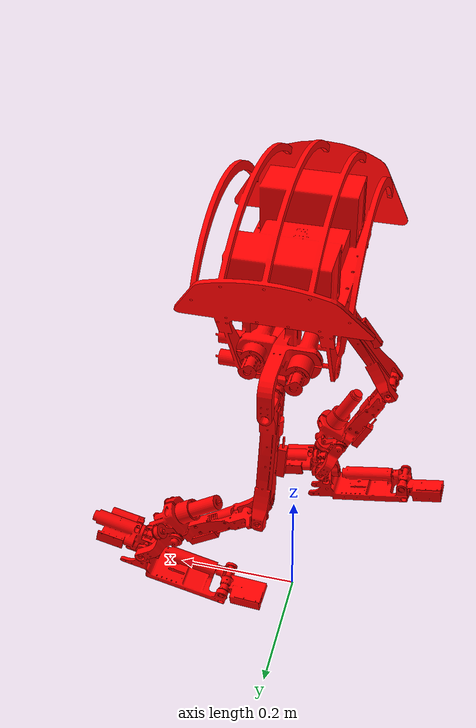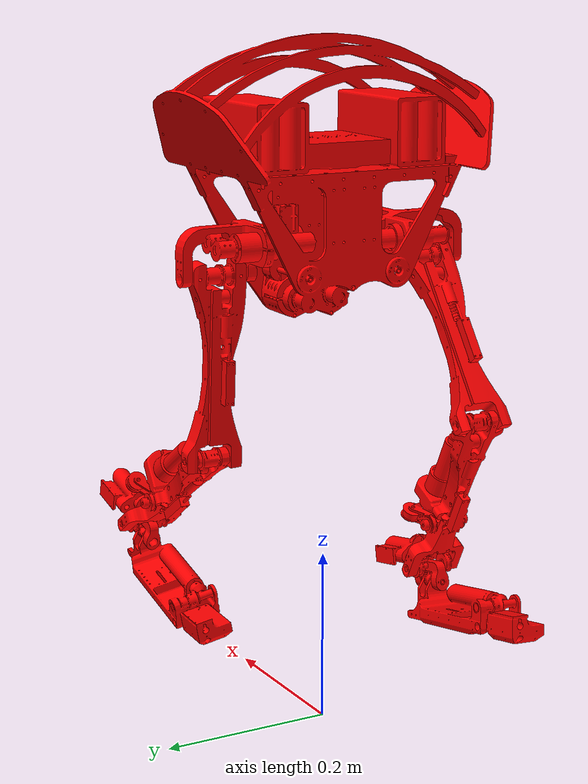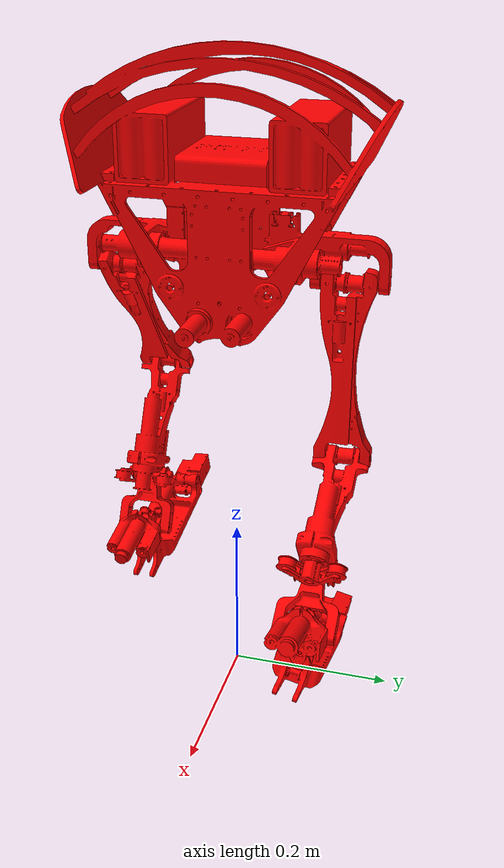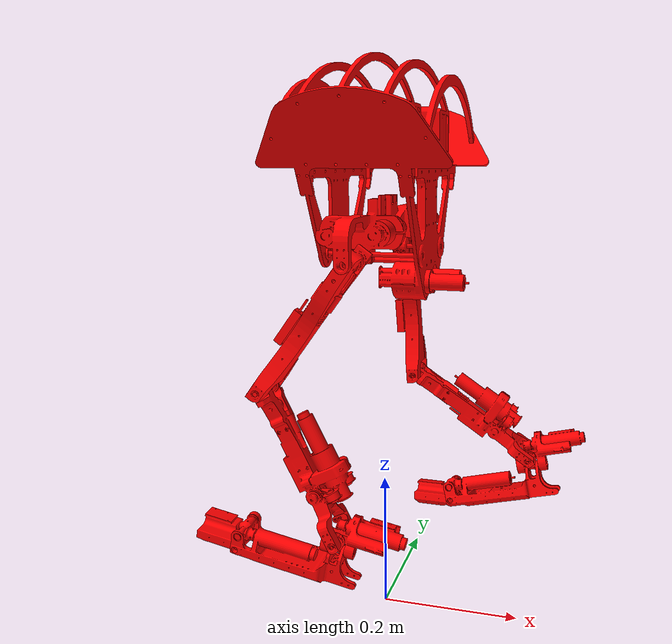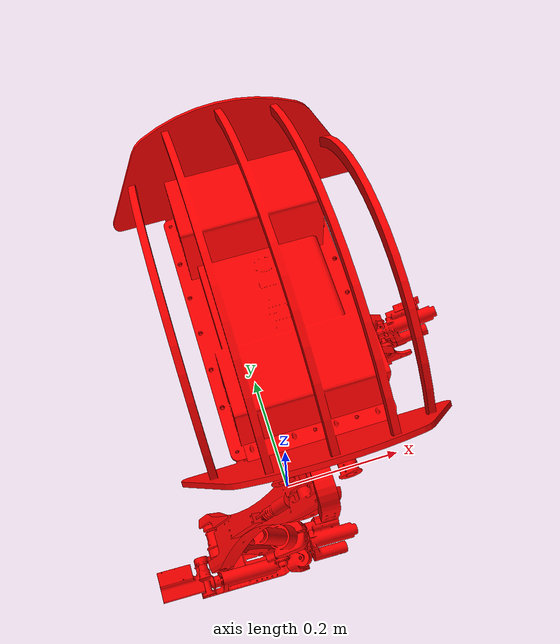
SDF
<?xml version="1.0" encoding="utf-8"?>
<sdf version="1.5">
  <model name="Legs">
    <pose>0 0 0.65 0 3.14159 3.14159265</pose>
    <link name="Body">
      <gravity>1</gravity>
      <self_collide>0</self_collide>
      <pose>0.00768175850954472 0.000179265906440795 0.00193782303055878 -1.57591570939229 -1.09960843565691E-16 -1.5707963267949</pose>
      <must_be_base_link>1</must_be_base_link>
      <velocity_decay>
        <linear>0</linear>
        <angular>0</angular>
      </velocity_decay>
      <inertial>
        <mass>3.53324885586669</mass>
        <pose>0 0 0 0 0 0</pose>
        <inertia>
          <ixx>0.0271179077728006</ixx>
          <ixy>1.18852566353165E-05</ixy>
          <ixz>2.95478792996178E-05</ixz>
          <iyy>0.0323353494450389</iyy>
          <iyz>0.00289482168449843</iyz>
          <izz>0.0422145237899791</izz>
        </inertia>
      </inertial>
      <visual name="Body_visual">
        <pose>-0.0592288541830322 -0.411233517898115 -0.0807174320615723 0 0 0</pose>
        <material>
          <ambient>1 0 0 1</ambient>
          <diffuse>1 0 0 1</diffuse>
        </material>
        <geometry>
          <mesh>
            <scale>1 1 1</scale>
            <uri>model://Legs/meshes/Body.STL</uri>
          </mesh>
        </geometry>
      </visual>
    </link>

    <link name="Left_Hip">
      <gravity>1</gravity>
      <self_collide>0</self_collide>
      <pose>-0.00302071721011885 0.0904826315882399 0.0801332115460175 -1.57591570939229 -1.09960843565691E-16 -1.5707963267949</pose>
      <must_be_base_link>0</must_be_base_link>
      <velocity_decay>
        <linear>0</linear>
        <angular>0</angular>
      </velocity_decay>
      <inertial>
        <mass>0.437298303222343</mass>
        <pose>0 0 0 0 0 0</pose>
        <inertia>
          <ixx>0.000344658356089893</ixx>
          <ixy>1.44389409480782E-05</ixy>
          <ixz>5.03774354824887E-05</ixz>
          <iyy>0.000819710121372741</iyy>
          <iyz>1.99893504999303E-05</iyz>
          <izz>0.000669559632846757</izz>
        </inertia>
      </inertial>
      <visual name="Left_Hip_visual">
        <pose>0.0310745114987668 -0.33309394388447 -0.0696147862246666 0 0 0</pose>
        <material>
          <ambient>1 0 0 1</ambient>
          <diffuse>1 0 0 1</diffuse>
        </material>
        <geometry>
          <mesh>
            <scale>1 1 1</scale>
            <uri>model://Legs/meshes/Left_Hip.STL</uri>
          </mesh>
        </geometry>
      </visual>
    </link>
    <joint name="Body-Left_Hip" type="revolute">
      <parent>Body</parent>
      <child>Left_Hip</child>
      <pose>0.0349201315882379 -0.0309913823372614 -0.000158658129443795 0 0 0</pose>
      <axis>
        <xyz>2.26631087592091E-16 0.00511936023589068 -0.99998689598953</xyz>
        <dynamics>
          <damping>0</damping>
          <friction>0</friction>
        </dynamics>
        <limit>
          <effort>1</effort>
        </limit>
      </axis>
    </joint>
    <link name="Top_Left_Leg">
      <gravity>1</gravity>
      <self_collide>0</self_collide>
      <pose>-0.0548610147832719 0.136159037985039 0.186134372336002 -1.57591570939229 -1.09960843565691E-16 -1.5707963267949</pose>
      <must_be_base_link>0</must_be_base_link>
      <velocity_decay>
        <linear>0</linear>
        <angular>0</angular>
      </velocity_decay>
      <inertial>
        <mass>0.498661420183801</mass>
        <pose>0 0 0 0 0 0</pose>
        <inertia>
          <ixx>0.0022202328840653</ixx>
          <ixy>2.25938202171209E-05</ixy>
          <ixz>1.58874590925852E-05</ixz>
          <iyy>0.000900377243940707</iyy>
          <iyz>0.00103894283838232</iyz>
          <izz>0.00154105773276496</izz>
        </inertia>
      </inertial>
      <visual name="Top_Left_Leg_visual">
        <pose>0.0767509178955661 -0.22735956129282 -0.0172325098398092 0 0 0</pose>
        <material>
          <ambient>1 0 0 1</ambient>
          <diffuse>1 0 0 1</diffuse>
        </material>
        <geometry>
          <mesh>
            <scale>1 1 1</scale>
            <uri>model://Legs/meshes/Top_Left_Leg.STL</uri>
          </mesh>
        </geometry>
      </visual>
    </link>
    <joint name="Left_Hip-Top_Left_Leg" type="revolute">
      <parent>Left_Hip</parent>
      <child>Top_Left_Leg</child>
      <pose>1.56819002228303E-15 0.0747275361148179 0.0552442958820208 0 0 0</pose>
      <axis>
        <xyz>1 3.25395847830803E-16 2.15461205798195E-16</xyz>
        <dynamics>
          <damping>0</damping>
          <friction>0</friction>
        </dynamics>
        <limit>
          <effort>1</effort>
        </limit>
      </axis>
    </joint>
    <link name="Bottom_Left_Leg">
      <gravity>1</gravity>
      <self_collide>0</self_collide>
      <pose>-0.0618431287041254 0.132087653975484 0.383208200273793 -1.57591570939229 -1.09960843565691E-16 -1.5707963267949</pose>
      <must_be_base_link>0</must_be_base_link>
      <velocity_decay>
        <linear>0</linear>
        <angular>0</angular>
      </velocity_decay>
      <inertial>
        <mass>0.559939379300119</mass>
        <pose>0 0 0 0 0 0</pose>
        <inertia>
          <ixx>0.00244450241697025</ixx>
          <ixy>3.69654298731094E-07</ixy>
          <ixz>6.79717535660184E-07</ixz>
          <iyy>0.000755387980562578</iyy>
          <iyz>0.000916506613563391</iyz>
          <izz>0.00193582631963136</izz>
        </inertia>
      </inertial>
      <visual name="Bottom_Left_Leg_visual">
        <pose>0.072679533886011 -0.0303240597689022 -0.0092415954943702 0 0 0</pose>
        <material>
          <ambient>1 0 0 1</ambient>
          <diffuse>1 0 0 1</diffuse>
        </material>
        <geometry>
          <mesh>
            <scale>1 1 1</scale>
            <uri>model://Legs/meshes/Bottom_Left_Leg.STL</uri>
          </mesh>
        </geometry>
      </visual>
    </link>
    <joint name="Top_Left_Leg-Bottom_Left_Leg" type="revolute">
      <parent>Top_Left_Leg</parent>
      <child>Bottom_Left_Leg</child>
      <pose>1.67921232474555E-15 0.102933646405913 -0.060893107073452 0 0 0</pose>
      <axis>
        <xyz>1 -3.85202525990067E-16 6.26498440573433E-17</xyz>
        <dynamics>
          <damping>0</damping>
          <friction>0</friction>
        </dynamics>
        <limit>
          <effort>1</effort>
        </limit>
      </axis>
    </joint>
    <link name="Left_Ankle">
      <gravity>1</gravity>
      <self_collide>0</self_collide>
      <pose>0.0022715979763874 0.132578252990325 0.477747055061699 -1.57591570939229 -1.09960843565691E-16 -1.5707963267949</pose>
      <must_be_base_link>0</must_be_base_link>
      <velocity_decay>
        <linear>0</linear>
        <angular>0</angular>
      </velocity_decay>
      <inertial>
        <mass>0.117207342953091</mass>
        <pose>0 0 0 0 0 0</pose>
        <inertia>
          <ixx>0.0001118971373696</ixx>
          <ixy>1.03258004756412E-07</ixy>
          <ixz>2.63723484214595E-06</ixz>
          <iyy>0.000113499651845419</iyy>
          <iyz>1.29932430255768E-05</iyz>
          <izz>3.45468575487321E-05</izz>
        </inertia>
      </inertial>
      <visual name="Left_Ankle_visual">
        <pose>0.0731701329008523 0.0645417825631641 -0.0728715035608855 0 0 0</pose>
        <material>
          <ambient>1 0 0 1</ambient>
          <diffuse>1 0 0 1</diffuse>
        </material>
        <geometry>
          <mesh>
            <scale>1 1 1</scale>
            <uri>model://Legs/meshes/Left_Ankle.STL</uri>
          </mesh>
        </geometry>
      </visual>
    </link>
    <joint name="Bottom_Left_Leg-Left_Ankle" type="revolute">
      <parent>Bottom_Left_Leg</parent>
      <child>Left_Ankle</child>
      <pose>1.60982338570648E-15 -0.000389575645607113 -0.0260609167835086 0 0 0</pose>
      <axis>
        <xyz>1 4.12104646912222E-16 -2.42583221004443E-16</xyz>
        <dynamics>
          <damping>0</damping>
          <friction>0</friction>
        </dynamics>
        <limit>
          <effort>1</effort>
        </limit>
      </axis>
    </joint>

    <link name="Left_Foot">
      <gravity>1</gravity>
      <self_collide>0</self_collide>
      <pose>-0.100191233799919 0.133056514591249 0.510411516255908 -1.57591570939229 -1.09960843565691E-16 -1.5707963267949</pose>
      <must_be_base_link>0</must_be_base_link>
      <velocity_decay>
        <linear>0</linear>
        <angular>0</angular>
      </velocity_decay>
      <inertial>
        <mass>0.350801135347807</mass>
        <pose>0 0 0 0 0 0</pose>
        <inertia>
          <ixx>0.000903634359316998</ixx>
          <ixy>6.81631434892799E-06</ixy>
          <ixz>6.41865216088924E-06</ixz>
          <iyy>0.000881949331142604</iyy>
          <iyz>0.000189334412776746</iyz>
          <izz>0.000194697308399392</izz>
        </inertia>
      </inertial>
      <collision name="Left_Foot_collision">
        <pose>0.073648394501776 0.0966812715752798 0.0297572066851651 0 0 0</pose>
        <geometry>
          <mesh>
            <scale>1 1 1</scale>
            <uri>model://Legs/meshes/Left_Foot_col.STL</uri>
          </mesh>
        </geometry>
        <surface>
          <contact>
            <ode />
          </contact>
          <friction>
            <ode>
              <mu>1</mu>
              <mu2>1</mu2>
            </ode>
          </friction>
        </surface>
      </collision>
      <visual name="Left_Foot_visual">
        <pose>0.073648394501776 0.0966812715752798 0.0297572066851651 0 0 0</pose>
        <material>
          <ambient>1 0 0 1</ambient>
          <diffuse>1 0 0 1</diffuse>
        </material>
        <geometry>
          <mesh>
            <scale>1 1 1</scale>
            <uri>model://Legs/meshes/Left_Foot.STL</uri>
          </mesh>
        </geometry>
      </visual>
    </link>
    <joint name="Left_Ankle-Left_Foot" type="revolute">
      <parent>Left_Ankle</parent>
      <child>Left_Foot</child>
      <pose>-0.000293485408752292 0.0270907246106346 0.00530017435922181 0 0 0</pose>
      <axis>
        <xyz>-1.04083408558608E-16 0.19200515846965 -0.981393916386812</xyz>
        <dynamics>
          <damping>0</damping>
          <friction>0</friction>
        </dynamics>
        <limit>
          <effort>1</effort>
        </limit>
      </axis>
    </joint>
    <link name="Left_Toe">
      <gravity>1</gravity>
      <self_collide>0</self_collide>
      <pose>-0.198434376512781 0.128835624158432 0.49853829846599 -1.57591570939229 -1.09960843565691E-16 -1.5707963267949</pose>
      <must_be_base_link>0</must_be_base_link>
      <velocity_decay>
        <linear>0</linear>
        <angular>0</angular>
      </velocity_decay>
      <inertial>
        <mass>0.137471306967525</mass>
        <pose>0 0 0 0 0 0</pose>
        <inertia>
          <ixx>5.13428369228838E-05</ixx>
          <ixy>4.87352564894428E-06</ixy>
          <ixz>3.09756363634257E-06</ixz>
          <iyy>5.9551310496803E-05</iyy>
          <iyz>8.34215292948262E-06</iyz>
          <izz>2.7574447290241E-05</izz>
        </inertia>
      </inertial>
      <collision name="Left_Toe_collision">
        <pose>0.0694275040689593 0.084305267333879 0.127938278739831 0 0 0</pose>
        <geometry>
          <mesh>
            <scale>1 1 1</scale>
            <uri>model://Legs/meshes/Left_Toe_col.STL</uri>
          </mesh>
        </geometry>
        <surface>
          <contact>
            <ode />
          </contact>
          <friction>
            <ode>
              <mu>1</mu>
              <mu2>1</mu2>
            </ode>
          </friction>
        </surface>
      </collision>
      <visual name="Left_Toe_visual">
        <pose>0.0694275040689593 0.084305267333879 0.127938278739831 0 0 0</pose>
        <material>
          <ambient>1 0 0 1</ambient>
          <diffuse>1 0 0 1</diffuse>
        </material>
        <geometry>
          <mesh>
            <scale>1 1 1</scale>
            <uri>model://Legs/meshes/Left_Toe.STL</uri>
          </mesh>
        </geometry>
      </visual>
    </link>
    <joint name="Left_Foot-Left_Toe" type="revolute">
      <parent>Left_Foot</parent>
      <child>Left_Toe</child>
      <pose>5.08453102975037E-06 -0.00618736148598757 0.0312100585828985 0 0 0</pose>
      <axis>
        <xyz>0.997973600934605 0.0624454389186932 0.01221715989379</xyz>
        <dynamics>
          <damping>0</damping>
          <friction>0</friction>
        </dynamics>
        <limit>
          <effort>1</effort>
        </limit>
      </axis>
    </joint>
    <link name="Right_Hip">
      <gravity>1</gravity>
      <self_collide>0</self_collide>
      <pose>0.00312994663933749 -0.0901751230559593 0.0802442173910227 -1.57591570939229 -1.09960843565691E-16 -1.5707963267949</pose>
      <must_be_base_link>0</must_be_base_link>
      <velocity_decay>
        <linear>0</linear>
        <angular>0</angular>
      </velocity_decay>
      <inertial>
        <mass>0.429542604129865</mass>
        <pose>0 0 0 0 0 0</pose>
        <inertia>
          <ixx>0.000335620222780637</ixx>
          <ixy>1.71766252899158E-05</ixy>
          <ixz>6.82036560203187E-05</ixz>
          <iyy>0.000796625170345829</iyy>
          <iyz>1.87749814800264E-05</iyz>
          <izz>0.000651844767117382</izz>
        </inertia>
      </inertial>
      <visual name="Right_Hip_visual">
        <pose>-0.149583243145432 -0.332951452030152 -0.0757648011968506 0 0 0</pose>
        <material>
          <ambient>1 0 0 1</ambient>
          <diffuse>1 0 0 1</diffuse>
        </material>
        <geometry>
          <mesh>
            <scale>1 1 1</scale>
            <uri>model://Legs/meshes/Right_Hip.STL</uri>
          </mesh>
        </geometry>
      </visual>
    </link>
    <joint name="Body-Right_Hip" type="revolute">
      <parent>Body</parent>
      <child>Right_Hip</child>
      <pose>-0.0346126230559593 -0.0308803779468804 -0.000158089850541568 0 1.56567694419749 3.1364732709924</pose>
      <axis>
        <xyz>-0.999973926318196 0.00511929315173976 0.00509308564596344</xyz>
        <dynamics>
          <damping>0</damping>
          <friction>0</friction>
        </dynamics>
        <limit>
          <effort>1</effort>
        </limit>
      </axis>
    </joint>
    <link name="Top_Right_Leg">
      <gravity>1</gravity>
      <self_collide>0</self_collide>
      <pose>0.0064724412393402 -0.130809955126275 0.205180981422238 -1.57591570939229 -1.09960843565691E-16 -1.5707963267949</pose>
      <must_be_base_link>0</must_be_base_link>
      <velocity_decay>
        <linear>0</linear>
        <angular>0</angular>
      </velocity_decay>
      <inertial>
        <mass>0.473894644129491</mass>
        <pose>0 0 0 0 0 0</pose>
        <inertia>
          <ixx>0.00219613507963254</ixx>
          <ixy>2.40586911361442E-05</ixy>
          <ixz>2.21507685447765E-06</ixz>
          <iyy>0.00013957904599556</iyy>
          <iyz>0.000138530235433403</iyz>
          <izz>0.00227576384193981</izz>
        </inertia>
      </inertial>
      <visual name="Top_Right_Leg_visual">
        <pose>-0.190218075215748 -0.207999213737656 -0.0784676556949869 0 0 0</pose>
        <material>
          <ambient>1 0 0 1</ambient>
          <diffuse>1 0 0 1</diffuse>
        </material>
        <geometry>
          <mesh>
            <scale>1 1 1</scale>
            <uri>model://Legs/meshes/Top_Right_Leg.STL</uri>
          </mesh>
        </geometry>
      </visual>
    </link>
    <joint name="Right_Hip-Top_Right_Leg" type="revolute">
      <parent>Right_Hip</parent>
      <child>Top_Right_Leg</child>
      <pose>3.05311331771918E-16 0.0940878836699856 -0.00599084997316941 0 0 0</pose>
      <axis>
        <xyz>1 2.71894623509211E-16 -5.22931016173689E-18</xyz>
        <dynamics>
          <damping>0</damping>
          <friction>0</friction>
        </dynamics>
        <limit>
          <effort>1</effort>
        </limit>
      </axis>
    </joint>
    <link name="Bottom_Right_Leg">
      <gravity>1</gravity>
      <self_collide>0</self_collide>
      <pose>0.115139983212419 -0.134269631890593 0.377853478776962 -1.57591570939229 -1.09960843565691E-16 -1.5707963267949</pose>
      <must_be_base_link>0</must_be_base_link>
      <velocity_decay>
        <linear>0</linear>
        <angular>0</angular>
      </velocity_decay>
      <inertial>
        <mass>0.562143515434244</mass>
        <pose>0 0 0 0 0 0</pose>
        <inertia>
          <ixx>0.00243275192303071</ixx>
          <ixy>1.42384112825202E-05</ixy>
          <ixz>2.9655382212159E-05</ixz>
          <iyy>0.00182049740298604</iyy>
          <iyz>0.000973515781838336</iyz>
          <izz>0.000848965740644351</izz>
        </inertia>
      </inertial>
      <visual name="Bottom_Right_Leg_visual">
        <pose>-0.193677751980066 -0.0347726707918373 -0.186249800970668 0 0 0</pose>
        <material>
          <ambient>1 0 0 1</ambient>
          <diffuse>1 0 0 1</diffuse>
        </material>
        <geometry>
          <mesh>
            <scale>1 1 1</scale>
            <uri>model://Legs/meshes/Bottom_Right_Leg.STL</uri>
          </mesh>
        </geometry>
      </visual>
    </link>
    <joint name="Top_Right_Leg-Bottom_Right_Leg" type="revolute">
      <parent>Top_Right_Leg</parent>
      <child>Bottom_Right_Leg</child>
      <pose>-4.9960036108132E-16 0.0582249077311838 -0.099888630207549 0 0 0</pose>
      <axis>
        <xyz>1 -4.48397327428907E-16 9.21404313790441E-17</xyz>
        <dynamics>
          <damping>0</damping>
          <friction>0</friction>
        </dynamics>
        <limit>
          <effort>1</effort>
        </limit>
      </axis>
    </joint>
    <link name="Right_Ankle">
      <gravity>1</gravity>
      <self_collide>0</self_collide>
      <pose>0.223241481104244 -0.134143350548776 0.431041298967327 -1.57591570939229 -1.09960843565691E-16 -1.5707963267949</pose>
      <must_be_base_link>0</must_be_base_link>
      <velocity_decay>
        <linear>0</linear>
        <angular>0</angular>
      </velocity_decay>
      <inertial>
        <mass>0.113529394776609</mass>
        <pose>0 0 0 0 0 0</pose>
        <inertia>
          <ixx>0.000102683650726326</ixx>
          <ixy>1.10048891971433E-06</ixy>
          <ixz>2.23477907251397E-06</ixz>
          <iyy>8.45946830403131E-05</iyy>
          <iyz>3.39608024178375E-05</iyz>
          <izz>5.41062178046503E-05</izz>
        </inertia>
      </inertial>
      <visual name="Right_Ankle_visual">
        <pose>-0.193551470638249 0.0189678629345229 -0.294077594687617 0 0 0</pose>
        <material>
          <ambient>1 0 0 1</ambient>
          <diffuse>1 0 0 1</diffuse>
        </material>
        <geometry>
          <mesh>
            <scale>1 1 1</scale>
            <uri>model://Legs/meshes/Right_Ankle.STL</uri>
          </mesh>
        </geometry>
      </visual>
    </link>
    <joint name="Bottom_Right_Leg-Right_Ankle" type="revolute">
      <parent>Bottom_Right_Leg</parent>
      <child>Right_Ankle</child>
      <pose>-1.94289029309402E-16 -0.0123799591796743 -0.0246538351894772 0 0 0</pose>
      <axis>
        <xyz>1 4.24065551575166E-16 -6.60791630014945E-16</xyz>
        <dynamics>
          <damping>0</damping>
          <friction>0</friction>
        </dynamics>
        <limit>
          <effort>1</effort>
        </limit>
      </axis>
    </joint>
    <link name="Right_Foot">
      <gravity>1</gravity>
      <self_collide>0</self_collide>
      <pose>0.140814046657591 -0.126081076002634 0.505467244008859 -1.57591570939229 -1.09960843565691E-16 -1.5707963267949</pose>
      <must_be_base_link>0</must_be_base_link>
      <velocity_decay>
        <linear>0</linear>
        <angular>0</angular>
      </velocity_decay>
      <inertial>
        <mass>0.335422480362735</mass>
        <pose>0 0 0 0 0 0</pose>
        <inertia>
          <ixx>0.000829521523535236</ixx>
          <ixy>1.42215919206188E-05</ixy>
          <ixz>2.86900349166642E-06</ixz>
          <iyy>0.000842559789853102</iyy>
          <iyz>0.000105554116604612</iyz>
          <izz>0.000147263437908165</izz>
        </inertia>
      </inertial>
      <collision name="Right_Foot_collision">
        <pose>-0.185489196092107 0.0929708569674398 -0.211270227147363 0 0 0</pose>
        <geometry>
          <mesh>
            <scale>1 1 1</scale>
            <uri>model://Legs/meshes/Right_Foot_col.STL</uri>
          </mesh>
        </geometry>
        <surface>
          <contact>
            <ode />
          </contact>
          <friction>
            <ode>
              <mu>1</mu>
              <mu2>1</mu2>
            </ode>
          </friction>
        </surface>
      </collision>
      <visual name="Right_Foot_visual">
        <pose>-0.185489196092107 0.0929708569674398 -0.211270227147363 0 0 0</pose>
        <material>
          <ambient>1 0 0 1</ambient>
          <diffuse>1 0 0 1</diffuse>
        </material>
        <geometry>
          <mesh>
            <scale>1 1 1</scale>
            <uri>model://Legs/meshes/Right_Foot.STL</uri>
          </mesh>
        </geometry>
      </visual>
    </link>
    <joint name="Right_Ankle-Right_Foot" type="revolute">
      <parent>Right_Ankle</parent>
      <child>Right_Foot</child>
      <pose>0.00726892399736426 0.0269453375785761 -0.00660748251251006 0 0 0</pose>
      <axis>
        <xyz>-8.10115863281169E-16 0.238161987539767 0.971225446377466</xyz>
        <dynamics>
          <damping>0</damping>
          <friction>0</friction>
        </dynamics>
        <limit>
          <effort>1</effort>
        </limit>
      </axis>
    </joint>
    <link name="Right_Toe">
      <gravity>1</gravity>
      <self_collide>0</self_collide>
      <pose>0.0482978071678332 -0.130431537948153 0.52806743442158 -1.57591570939229 -1.09960843565691E-16 -1.5707963267949</pose>
      <must_be_base_link>0</must_be_base_link>
      <velocity_decay>
        <linear>0</linear>
        <angular>0</angular>
      </velocity_decay>
      <inertial>
        <mass>0.139661985071308</mass>
        <pose>0 0 0 0 0 0</pose>
        <inertia>
          <ixx>5.18677292860377E-05</ixx>
          <ixy>9.96500122938222E-07</ixy>
          <ixz>4.36419833922011E-06</ixz>
          <iyy>6.5741842064624E-05</iyy>
          <iyz>4.51832032055873E-07</iyz>
          <izz>2.6595765607135E-05</izz>
        </inertia>
      </inertial>
      <collision name="Right_Toe_collision">
        <pose>-0.189839658037626 0.115097127269411 -0.118639501475254 0 0 0</pose>
        <geometry>
          <mesh>
            <scale>1 1 1</scale>
            <uri>model://Legs/meshes/Right_Toe_col.STL</uri>
          </mesh>
        </geometry>
        <surface>
          <contact>
            <ode />
          </contact>
          <friction>
            <ode>
              <mu>1</mu>
              <mu2>1</mu2>
            </ode>
          </friction>
        </surface>
      </collision>
      <visual name="Right_Toe_visual">
        <pose>-0.189839658037626 0.115097127269411 -0.118639501475254 0 0 0</pose>
        <material>
          <ambient>1 0 0 1</ambient>
          <diffuse>1 0 0 1</diffuse>
        </material>
        <geometry>
          <mesh>
            <scale>1 1 1</scale>
            <uri>model://Legs/meshes/Right_Toe.STL</uri>
          </mesh>
        </geometry>
      </visual>
    </link>
    <joint name="Right_Foot-Right_Toe" type="revolute">
      <parent>Right_Foot</parent>
      <child>Right_Toe</child>
      <pose>-0.00148296137265616 0.000204687556132996 0.0312825868778026 0 0 0</pose>
      <axis>
        <xyz>0.979723026174111 -0.194591488428595 0.0477173408247628</xyz>
        <dynamics>
          <damping>0</damping>
          <friction>0</friction>
        </dynamics>
        <limit>
          <effort>1</effort>
        </limit>
      </axis>
    </joint>
  </model>
</sdf>
